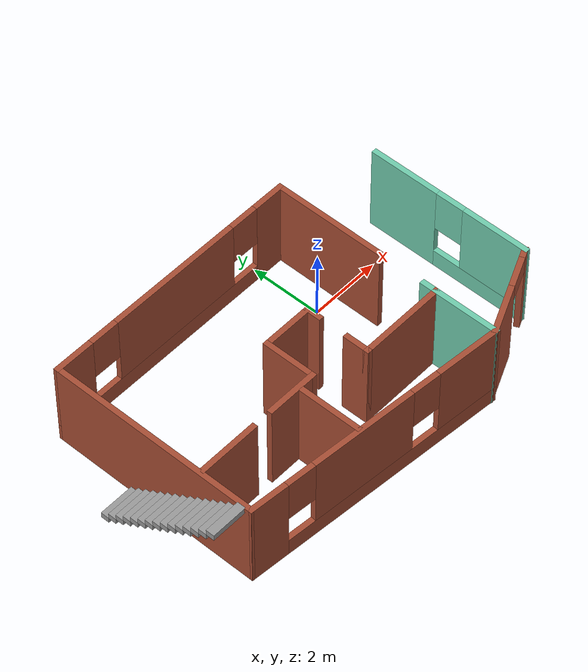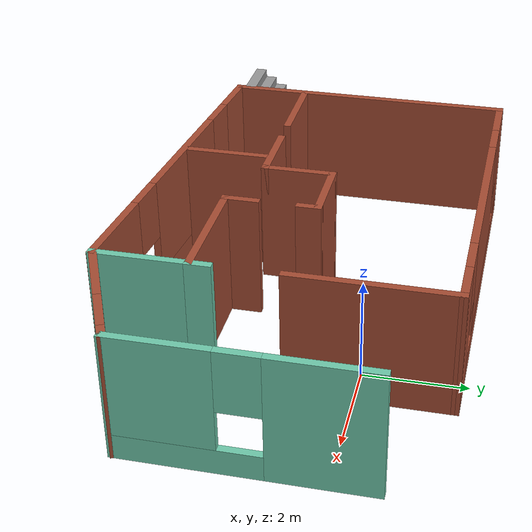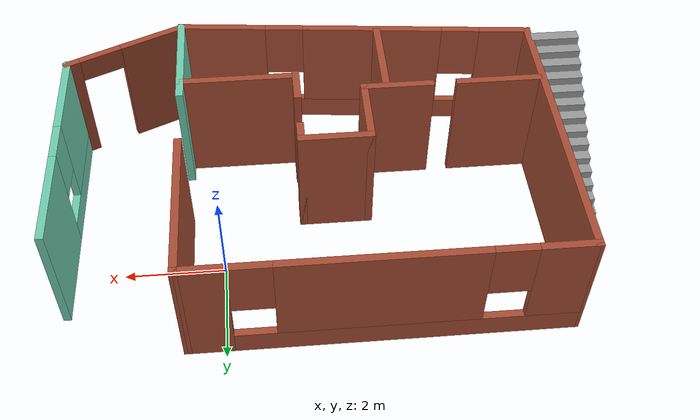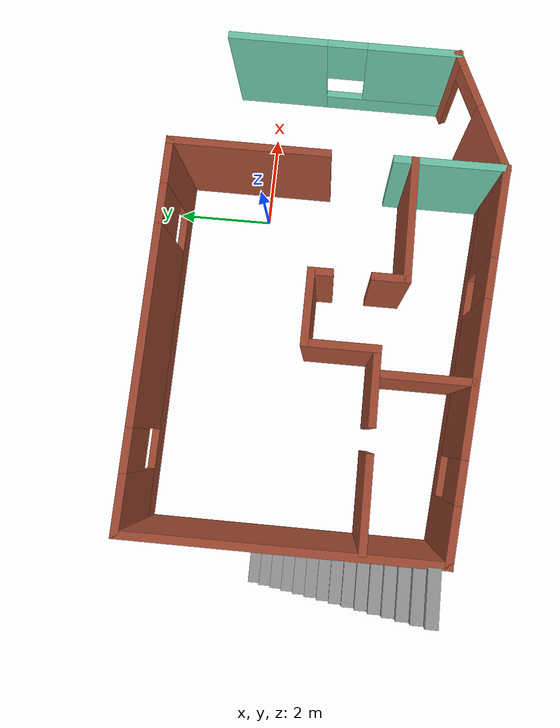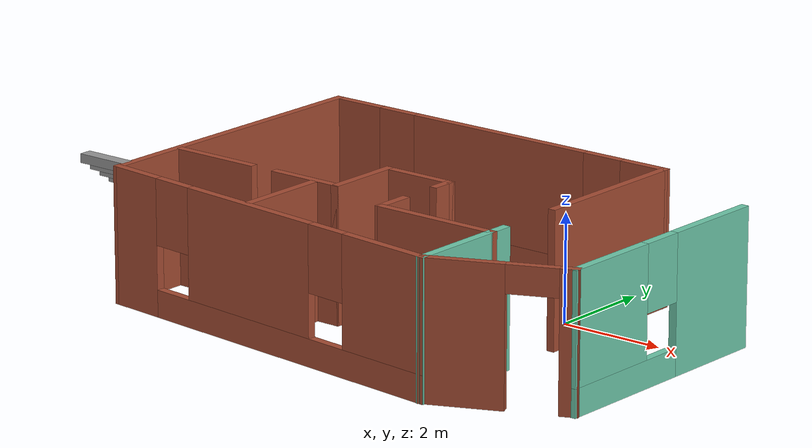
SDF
<?xml version='1.0'?>
<sdf version='1.6'>
  <model name='world_1'>
    <pose frame=''>-2.27165 -1.45762 0 0 -0 0</pose>
    <link name='Stairs_0'>
      <visual name='Stairs_0_Visual_0'>
        <pose frame=''>-4.90473 0.962573 0.083333 0 -0 0</pose>
        <geometry>
          <box>
            <size>1 0.233333 0.166667</size>
          </box>
        </geometry>
        <material>
          <script>
            <uri>file://media/materials/scripts/gazebo.material</uri>
            <name>Gazebo/Grey</name>
          </script>
          <ambient>1 1 1 1</ambient>
        </material>
        <meta>
          <layer>0</layer>
        </meta>
      </visual>
      <collision name='Stairs_0_Collision_0'>
        <geometry>
          <box>
            <size>1 0.233333 0.166667</size>
          </box>
        </geometry>
        <pose frame=''>-4.90473 0.962573 0.083333 0 -0 0</pose>
      </collision>
      <visual name='Stairs_0_Visual_1'>
        <pose frame=''>-4.90473 0.72924 0.25 0 -0 0</pose>
        <geometry>
          <box>
            <size>1 0.233333 0.166667</size>
          </box>
        </geometry>
        <material>
          <script>
            <uri>file://media/materials/scripts/gazebo.material</uri>
            <name>Gazebo/Grey</name>
          </script>
          <ambient>1 1 1 1</ambient>
        </material>
        <meta>
          <layer>0</layer>
        </meta>
      </visual>
      <collision name='Stairs_0_Collision_1'>
        <geometry>
          <box>
            <size>1 0.233333 0.166667</size>
          </box>
        </geometry>
        <pose frame=''>-4.90473 0.72924 0.25 0 -0 0</pose>
      </collision>
      <visual name='Stairs_0_Visual_2'>
        <pose frame=''>-4.90473 0.495906 0.416667 0 -0 0</pose>
        <geometry>
          <box>
            <size>1 0.233333 0.166667</size>
          </box>
        </geometry>
        <material>
          <script>
            <uri>file://media/materials/scripts/gazebo.material</uri>
            <name>Gazebo/Grey</name>
          </script>
          <ambient>1 1 1 1</ambient>
        </material>
        <meta>
          <layer>0</layer>
        </meta>
      </visual>
      <collision name='Stairs_0_Collision_2'>
        <geometry>
          <box>
            <size>1 0.233333 0.166667</size>
          </box>
        </geometry>
        <pose frame=''>-4.90473 0.495906 0.416667 0 -0 0</pose>
      </collision>
      <visual name='Stairs_0_Visual_3'>
        <pose frame=''>-4.90473 0.262573 0.583333 0 -0 0</pose>
        <geometry>
          <box>
            <size>1 0.233333 0.166667</size>
          </box>
        </geometry>
        <material>
          <script>
            <uri>file://media/materials/scripts/gazebo.material</uri>
            <name>Gazebo/Grey</name>
          </script>
          <ambient>1 1 1 1</ambient>
        </material>
        <meta>
          <layer>0</layer>
        </meta>
      </visual>
      <collision name='Stairs_0_Collision_3'>
        <geometry>
          <box>
            <size>1 0.233333 0.166667</size>
          </box>
        </geometry>
        <pose frame=''>-4.90473 0.262573 0.583333 0 -0 0</pose>
      </collision>
      <visual name='Stairs_0_Visual_4'>
        <pose frame=''>-4.90473 0.02924 0.75 0 -0 0</pose>
        <geometry>
          <box>
            <size>1 0.233333 0.166667</size>
          </box>
        </geometry>
        <material>
          <script>
            <uri>file://media/materials/scripts/gazebo.material</uri>
            <name>Gazebo/Grey</name>
          </script>
          <ambient>1 1 1 1</ambient>
        </material>
        <meta>
          <layer>0</layer>
        </meta>
      </visual>
      <collision name='Stairs_0_Collision_4'>
        <geometry>
          <box>
            <size>1 0.233333 0.166667</size>
          </box>
        </geometry>
        <pose frame=''>-4.90473 0.02924 0.75 0 -0 0</pose>
      </collision>
      <visual name='Stairs_0_Visual_5'>
        <pose frame=''>-4.90473 -0.204094 0.916667 0 -0 0</pose>
        <geometry>
          <box>
            <size>1 0.233333 0.166667</size>
          </box>
        </geometry>
        <material>
          <script>
            <uri>file://media/materials/scripts/gazebo.material</uri>
            <name>Gazebo/Grey</name>
          </script>
          <ambient>1 1 1 1</ambient>
        </material>
        <meta>
          <layer>0</layer>
        </meta>
      </visual>
      <collision name='Stairs_0_Collision_5'>
        <geometry>
          <box>
            <size>1 0.233333 0.166667</size>
          </box>
        </geometry>
        <pose frame=''>-4.90473 -0.204094 0.916667 0 -0 0</pose>
      </collision>
      <visual name='Stairs_0_Visual_6'>
        <pose frame=''>-4.90473 -0.437427 1.08333 0 -0 0</pose>
        <geometry>
          <box>
            <size>1 0.233333 0.166667</size>
          </box>
        </geometry>
        <material>
          <script>
            <uri>file://media/materials/scripts/gazebo.material</uri>
            <name>Gazebo/Grey</name>
          </script>
          <ambient>1 1 1 1</ambient>
        </material>
        <meta>
          <layer>0</layer>
        </meta>
      </visual>
      <collision name='Stairs_0_Collision_6'>
        <geometry>
          <box>
            <size>1 0.233333 0.166667</size>
          </box>
        </geometry>
        <pose frame=''>-4.90473 -0.437427 1.08333 0 -0 0</pose>
      </collision>
      <visual name='Stairs_0_Visual_7'>
        <pose frame=''>-4.90473 -0.67076 1.25 0 -0 0</pose>
        <geometry>
          <box>
            <size>1 0.233333 0.166667</size>
          </box>
        </geometry>
        <material>
          <script>
            <uri>file://media/materials/scripts/gazebo.material</uri>
            <name>Gazebo/Grey</name>
          </script>
          <ambient>1 1 1 1</ambient>
        </material>
        <meta>
          <layer>0</layer>
        </meta>
      </visual>
      <collision name='Stairs_0_Collision_7'>
        <geometry>
          <box>
            <size>1 0.233333 0.166667</size>
          </box>
        </geometry>
        <pose frame=''>-4.90473 -0.67076 1.25 0 -0 0</pose>
      </collision>
      <visual name='Stairs_0_Visual_8'>
        <pose frame=''>-4.90473 -0.904094 1.41667 0 -0 0</pose>
        <geometry>
          <box>
            <size>1 0.233333 0.166667</size>
          </box>
        </geometry>
        <material>
          <script>
            <uri>file://media/materials/scripts/gazebo.material</uri>
            <name>Gazebo/Grey</name>
          </script>
          <ambient>1 1 1 1</ambient>
        </material>
        <meta>
          <layer>0</layer>
        </meta>
      </visual>
      <collision name='Stairs_0_Collision_8'>
        <geometry>
          <box>
            <size>1 0.233333 0.166667</size>
          </box>
        </geometry>
        <pose frame=''>-4.90473 -0.904094 1.41667 0 -0 0</pose>
      </collision>
      <visual name='Stairs_0_Visual_9'>
        <pose frame=''>-4.90473 -1.13743 1.58333 0 -0 0</pose>
        <geometry>
          <box>
            <size>1 0.233333 0.166667</size>
          </box>
        </geometry>
        <material>
          <script>
            <uri>file://media/materials/scripts/gazebo.material</uri>
            <name>Gazebo/Grey</name>
          </script>
          <ambient>1 1 1 1</ambient>
        </material>
        <meta>
          <layer>0</layer>
        </meta>
      </visual>
      <collision name='Stairs_0_Collision_9'>
        <geometry>
          <box>
            <size>1 0.233333 0.166667</size>
          </box>
        </geometry>
        <pose frame=''>-4.90473 -1.13743 1.58333 0 -0 0</pose>
      </collision>
      <visual name='Stairs_0_Visual_10'>
        <pose frame=''>-4.90473 -1.37076 1.75 0 -0 0</pose>
        <geometry>
          <box>
            <size>1 0.233333 0.166667</size>
          </box>
        </geometry>
        <material>
          <script>
            <uri>file://media/materials/scripts/gazebo.material</uri>
            <name>Gazebo/Grey</name>
          </script>
          <ambient>1 1 1 1</ambient>
        </material>
        <meta>
          <layer>0</layer>
        </meta>
      </visual>
      <collision name='Stairs_0_Collision_10'>
        <geometry>
          <box>
            <size>1 0.233333 0.166667</size>
          </box>
        </geometry>
        <pose frame=''>-4.90473 -1.37076 1.75 0 -0 0</pose>
      </collision>
      <visual name='Stairs_0_Visual_11'>
        <pose frame=''>-4.90473 -1.60409 1.91667 0 -0 0</pose>
        <geometry>
          <box>
            <size>1 0.233333 0.166667</size>
          </box>
        </geometry>
        <material>
          <script>
            <uri>file://media/materials/scripts/gazebo.material</uri>
            <name>Gazebo/Grey</name>
          </script>
          <ambient>1 1 1 1</ambient>
        </material>
        <meta>
          <layer>0</layer>
        </meta>
      </visual>
      <collision name='Stairs_0_Collision_11'>
        <geometry>
          <box>
            <size>1 0.233333 0.166667</size>
          </box>
        </geometry>
        <pose frame=''>-4.90473 -1.60409 1.91667 0 -0 0</pose>
      </collision>
      <visual name='Stairs_0_Visual_12'>
        <pose frame=''>-4.90473 -1.83743 2.08333 0 -0 0</pose>
        <geometry>
          <box>
            <size>1 0.233333 0.166667</size>
          </box>
        </geometry>
        <material>
          <script>
            <uri>file://media/materials/scripts/gazebo.material</uri>
            <name>Gazebo/Grey</name>
          </script>
          <ambient>1 1 1 1</ambient>
        </material>
        <meta>
          <layer>0</layer>
        </meta>
      </visual>
      <collision name='Stairs_0_Collision_12'>
        <geometry>
          <box>
            <size>1 0.233333 0.166667</size>
          </box>
        </geometry>
        <pose frame=''>-4.90473 -1.83743 2.08333 0 -0 0</pose>
      </collision>
      <visual name='Stairs_0_Visual_13'>
        <pose frame=''>-4.90473 -2.07076 2.25 0 -0 0</pose>
        <geometry>
          <box>
            <size>1 0.233333 0.166667</size>
          </box>
        </geometry>
        <material>
          <script>
            <uri>file://media/materials/scripts/gazebo.material</uri>
            <name>Gazebo/Grey</name>
          </script>
          <ambient>1 1 1 1</ambient>
        </material>
        <meta>
          <layer>0</layer>
        </meta>
      </visual>
      <collision name='Stairs_0_Collision_13'>
        <geometry>
          <box>
            <size>1 0.233333 0.166667</size>
          </box>
        </geometry>
        <pose frame=''>-4.90473 -2.07076 2.25 0 -0 0</pose>
      </collision>
      <visual name='Stairs_0_Visual_14'>
        <pose frame=''>-4.90473 -2.30409 2.41667 0 -0 0</pose>
        <geometry>
          <box>
            <size>1 0.233333 0.166667</size>
          </box>
        </geometry>
        <material>
          <script>
            <uri>file://media/materials/scripts/gazebo.material</uri>
            <name>Gazebo/Grey</name>
          </script>
          <ambient>1 1 1 1</ambient>
        </material>
        <meta>
          <layer>0</layer>
        </meta>
      </visual>
      <collision name='Stairs_0_Collision_14'>
        <geometry>
          <box>
            <size>1 0.233333 0.166667</size>
          </box>
        </geometry>
        <pose frame=''>-4.90473 -2.30409 2.41667 0 -0 0</pose>
      </collision>
    </link>
    <link name='Wall_17'>
      <collision name='Wall_17_Collision'>
        <geometry>
          <box>
            <size>1.5 0.15 2.5</size>
          </box>
        </geometry>
        <pose frame=''>0 0 1.25 0 -0 0</pose>
      </collision>
      <visual name='Wall_17_Visual'>
        <pose frame=''>0 0 1.25 0 -0 0</pose>
        <geometry>
          <box>
            <size>1.5 0.15 2.5</size>
          </box>
        </geometry>
        <material>
          <script>
            <uri>file://media/materials/scripts/gazebo.material</uri>
            <name>Gazebo/Bricks</name>
          </script>
          <ambient>1 1 1 1</ambient>
        </material>
        <meta>
          <layer>0</layer>
        </meta>
      </visual>
      <pose frame=''>-1.38893 -1.04611 0 0 -0 0</pose>
    </link>
    <link name='Wall_18'>
      <collision name='Wall_18_Collision'>
        <geometry>
          <box>
            <size>1.5 0.15 2.5</size>
          </box>
        </geometry>
        <pose frame=''>0 0 1.25 0 -0 0</pose>
      </collision>
      <visual name='Wall_18_Visual'>
        <pose frame=''>0 0 1.25 0 -0 0</pose>
        <geometry>
          <box>
            <size>1.5 0.15 2.5</size>
          </box>
        </geometry>
        <material>
          <script>
            <uri>file://media/materials/scripts/gazebo.material</uri>
            <name>Gazebo/Bricks</name>
          </script>
          <ambient>1 1 1 1</ambient>
        </material>
        <meta>
          <layer>0</layer>
        </meta>
      </visual>
      <pose frame=''>-0.713932 -0.371112 0 0 -0 1.5708</pose>
    </link>
    <link name='Wall_19'>
      <collision name='Wall_19_Collision'>
        <geometry>
          <box>
            <size>1.5 0.15 2.5</size>
          </box>
        </geometry>
        <pose frame=''>0 0 1.25 0 -0 0</pose>
      </collision>
      <visual name='Wall_19_Visual'>
        <pose frame=''>0 0 1.25 0 -0 0</pose>
        <geometry>
          <box>
            <size>1.5 0.15 2.5</size>
          </box>
        </geometry>
        <material>
          <script>
            <uri>file://media/materials/scripts/gazebo.material</uri>
            <name>Gazebo/Bricks</name>
          </script>
          <ambient>1 1 1 1</ambient>
        </material>
        <meta>
          <layer>0</layer>
        </meta>
      </visual>
      <pose frame=''>-0.038932 0.303888 0 0 -0 0</pose>
    </link>
    <link name='Wall_20'>
      <collision name='Wall_20_Collision'>
        <geometry>
          <box>
            <size>0.5 0.15 2.5</size>
          </box>
        </geometry>
        <pose frame=''>0 0 1.25 0 -0 0</pose>
      </collision>
      <visual name='Wall_20_Visual'>
        <pose frame=''>0 0 1.25 0 -0 0</pose>
        <geometry>
          <box>
            <size>0.5 0.15 2.5</size>
          </box>
        </geometry>
        <material>
          <script>
            <uri>file://media/materials/scripts/gazebo.material</uri>
            <name>Gazebo/Bricks</name>
          </script>
          <ambient>1 1 1 1</ambient>
        </material>
        <meta>
          <layer>0</layer>
        </meta>
      </visual>
      <pose frame=''>0.636068 0.128888 0 0 -0 -1.5708</pose>
    </link>
    <link name='Wall_22'>
      <collision name='Wall_22_Collision'>
        <geometry>
          <box>
            <size>0.75 0.15 2.5</size>
          </box>
        </geometry>
        <pose frame=''>0 0 1.25 0 -0 0</pose>
      </collision>
      <visual name='Wall_22_Visual'>
        <pose frame=''>0 0 1.25 0 -0 0</pose>
        <geometry>
          <box>
            <size>0.75 0.15 2.5</size>
          </box>
        </geometry>
        <material>
          <script>
            <uri>file://media/materials/scripts/gazebo.material</uri>
            <name>Gazebo/Bricks</name>
          </script>
          <ambient>1 1 1 1</ambient>
        </material>
        <meta>
          <layer>0</layer>
        </meta>
      </visual>
      <pose frame=''>0.636068 -1.19611 0 0 -0 -1.5708</pose>
    </link>
    <link name='Wall_23'>
      <collision name='Wall_23_Collision'>
        <geometry>
          <box>
            <size>2.5 0.15 2.5</size>
          </box>
        </geometry>
        <pose frame=''>0 0 1.25 0 -0 0</pose>
      </collision>
      <visual name='Wall_23_Visual'>
        <pose frame=''>0 0 1.25 0 -0 0</pose>
        <geometry>
          <box>
            <size>2.5 0.15 2.5</size>
          </box>
        </geometry>
        <material>
          <script>
            <uri>file://media/materials/scripts/gazebo.material</uri>
            <name>Gazebo/Bricks</name>
          </script>
          <ambient>1 1 1 1</ambient>
        </material>
        <meta>
          <layer>0</layer>
        </meta>
      </visual>
      <pose frame=''>1.81107 -1.49611 0 0 -0 0</pose>
    </link>
    <link name='Wall_24'>
      <collision name='Wall_24_Collision'>
        <geometry>
          <box>
            <size>0.5 0.15 2.5</size>
          </box>
        </geometry>
        <pose frame=''>0 0 1.25 0 -0 0</pose>
      </collision>
      <visual name='Wall_24_Visual'>
        <pose frame=''>0 0 1.25 0 -0 0</pose>
        <geometry>
          <box>
            <size>0.5 0.15 2.5</size>
          </box>
        </geometry>
        <material>
          <script>
            <uri>file://media/materials/scripts/gazebo.material</uri>
            <name>Gazebo/Grey</name>
          </script>
          <ambient>0.435294 0.796078 0.67451 1</ambient>
        </material>
        <meta>
          <layer>0</layer>
        </meta>
      </visual>
      <pose frame=''>2.98607 -1.32111 0 0 -0 1.5708</pose>
    </link>
    <link name='Wall_26'>
      <collision name='Wall_26_Collision'>
        <geometry>
          <box>
            <size>3.21704 0.15 2.5</size>
          </box>
        </geometry>
        <pose frame=''>0 0 1.25 0 -0 0</pose>
      </collision>
      <visual name='Wall_26_Visual'>
        <pose frame=''>0 0 1.25 0 -0 0</pose>
        <geometry>
          <box>
            <size>3.21704 0.15 2.5</size>
          </box>
        </geometry>
        <material>
          <script>
            <uri>file://media/materials/scripts/gazebo.material</uri>
            <name>Gazebo/Bricks</name>
          </script>
          <ambient>1 1 1 1</ambient>
        </material>
        <meta>
          <layer>0</layer>
        </meta>
      </visual>
      <pose frame=''>2.99055 1.7374 0 0 -0 1.56787</pose>
    </link>
    <link name='Wall_30'>
      <collision name='Wall_30_Collision'>
        <geometry>
          <box>
            <size>1.91415 0.15 2.5</size>
          </box>
        </geometry>
        <pose frame=''>0 0 1.25 0 -0 0</pose>
      </collision>
      <visual name='Wall_30_Visual'>
        <pose frame=''>0 0 1.25 0 -0 0</pose>
        <geometry>
          <box>
            <size>1.91415 0.15 2.5</size>
          </box>
        </geometry>
        <material>
          <script>
            <uri>file://media/materials/scripts/gazebo.material</uri>
            <name>Gazebo/Grey</name>
          </script>
          <ambient>0.435294 0.796078 0.67451 1</ambient>
        </material>
        <meta>
          <layer>0</layer>
        </meta>
      </visual>
      <pose frame=''>2.98607 -2.37819 0 0 -0 1.5708</pose>
    </link>
    <link name='Wall_34'>
      <pose frame=''>-0.679968 3.27091 0 0 -0 3.14159</pose>
      <visual name='Wall_34_Visual_0'>
        <pose frame=''>-3.2676 0 1.25 0 -0 0</pose>
        <geometry>
          <box>
            <size>0.9648 0.15 2.5</size>
          </box>
        </geometry>
        <material>
          <script>
            <uri>file://media/materials/scripts/gazebo.material</uri>
            <name>Gazebo/Bricks</name>
          </script>
          <ambient>1 1 1 1</ambient>
        </material>
        <meta>
          <layer>0</layer>
        </meta>
      </visual>
      <collision name='Wall_34_Collision_0'>
        <geometry>
          <box>
            <size>0.9648 0.15 2.5</size>
          </box>
        </geometry>
        <pose frame=''>-3.2676 0 1.25 0 -0 0</pose>
      </collision>
      <visual name='Wall_34_Visual_1'>
        <pose frame=''>0.4824 0 0.25 0 -0 0</pose>
        <geometry>
          <box>
            <size>6.5352 0.15 0.5</size>
          </box>
        </geometry>
        <material>
          <script>
            <uri>file://media/materials/scripts/gazebo.material</uri>
            <name>Gazebo/Bricks</name>
          </script>
          <ambient>1 1 1 1</ambient>
        </material>
        <meta>
          <layer>0</layer>
        </meta>
      </visual>
      <collision name='Wall_34_Collision_1'>
        <geometry>
          <box>
            <size>6.5352 0.15 0.5</size>
          </box>
        </geometry>
        <pose frame=''>0.4824 0 0.25 0 -0 0</pose>
      </collision>
      <visual name='Wall_34_Visual_2'>
        <pose frame=''>-0.0737 0 1.5 0 -0 0</pose>
        <geometry>
          <box>
            <size>3.823 0.15 2</size>
          </box>
        </geometry>
        <material>
          <script>
            <uri>file://media/materials/scripts/gazebo.material</uri>
            <name>Gazebo/Bricks</name>
          </script>
          <ambient>1 1 1 1</ambient>
        </material>
        <meta>
          <layer>0</layer>
        </meta>
      </visual>
      <collision name='Wall_34_Collision_2'>
        <geometry>
          <box>
            <size>3.823 0.15 2</size>
          </box>
        </geometry>
        <pose frame=''>-0.0737 0 1.5 0 -0 0</pose>
      </collision>
      <visual name='Wall_34_Visual_3'>
        <pose frame=''>3.1939 0 1.5 0 -0 0</pose>
        <geometry>
          <box>
            <size>1.1122 0.15 2</size>
          </box>
        </geometry>
        <material>
          <script>
            <uri>file://media/materials/scripts/gazebo.material</uri>
            <name>Gazebo/Bricks</name>
          </script>
          <ambient>1 1 1 1</ambient>
        </material>
        <meta>
          <layer>0</layer>
        </meta>
      </visual>
      <collision name='Wall_34_Collision_3'>
        <geometry>
          <box>
            <size>1.1122 0.15 2</size>
          </box>
        </geometry>
        <pose frame=''>3.1939 0 1.5 0 -0 0</pose>
      </collision>
      <visual name='Wall_34_Visual_4'>
        <pose frame=''>-2.3852 0 1.9 0 -0 0</pose>
        <geometry>
          <box>
            <size>0.8 0.15 1.2</size>
          </box>
        </geometry>
        <material>
          <script>
            <uri>file://media/materials/scripts/gazebo.material</uri>
            <name>Gazebo/Bricks</name>
          </script>
          <ambient>1 1 1 1</ambient>
        </material>
        <meta>
          <layer>0</layer>
        </meta>
      </visual>
      <collision name='Wall_34_Collision_4'>
        <geometry>
          <box>
            <size>0.8 0.15 1.2</size>
          </box>
        </geometry>
        <pose frame=''>-2.3852 0 1.9 0 -0 0</pose>
      </collision>
      <visual name='Wall_34_Visual_5'>
        <pose frame=''>2.2378 0 1.9 0 -0 0</pose>
        <geometry>
          <box>
            <size>0.8 0.15 1.2</size>
          </box>
        </geometry>
        <material>
          <script>
            <uri>file://media/materials/scripts/gazebo.material</uri>
            <name>Gazebo/Bricks</name>
          </script>
          <ambient>1 1 1 1</ambient>
        </material>
        <meta>
          <layer>0</layer>
        </meta>
      </visual>
      <collision name='Wall_34_Collision_5'>
        <geometry>
          <box>
            <size>0.8 0.15 1.2</size>
          </box>
        </geometry>
        <pose frame=''>2.2378 0 1.9 0 -0 0</pose>
      </collision>
    </link>
    <link name='Wall_35'>
      <collision name='Wall_35_Collision'>
        <geometry>
          <box>
            <size>5.96703 0.15 2.5</size>
          </box>
        </geometry>
        <pose frame=''>0 0 1.25 0 -0 0</pose>
      </collision>
      <visual name='Wall_35_Visual'>
        <pose frame=''>0 0 1.25 0 -0 0</pose>
        <geometry>
          <box>
            <size>5.96703 0.15 2.5</size>
          </box>
        </geometry>
        <material>
          <script>
            <uri>file://media/materials/scripts/gazebo.material</uri>
            <name>Gazebo/Bricks</name>
          </script>
          <ambient>1 1 1 1</ambient>
        </material>
        <meta>
          <layer>0</layer>
        </meta>
      </visual>
      <pose frame=''>-4.35945 0.3624 0 0 -0 -1.57234</pose>
    </link>
    <link name='Wall_36'>
      <pose frame=''>-0.688932 -2.90319 0 0 -0 -0.096859</pose>
      <visual name='Wall_36_Visual_0'>
        <pose frame=''>-3.21938 0 1.25 0 -0 0</pose>
        <geometry>
          <box>
            <size>1.09586 0.15 2.5</size>
          </box>
        </geometry>
        <material>
          <script>
            <uri>file://media/materials/scripts/gazebo.material</uri>
            <name>Gazebo/Bricks</name>
          </script>
          <ambient>1 1 1 1</ambient>
        </material>
        <meta>
          <layer>0</layer>
        </meta>
      </visual>
      <collision name='Wall_36_Collision_0'>
        <geometry>
          <box>
            <size>1.09586 0.15 2.5</size>
          </box>
        </geometry>
        <pose frame=''>-3.21938 0 1.25 0 -0 0</pose>
      </collision>
      <visual name='Wall_36_Visual_1'>
        <pose frame=''>0.54793 0 0.25 0 -0 0</pose>
        <geometry>
          <box>
            <size>6.43875 0.15 0.5</size>
          </box>
        </geometry>
        <material>
          <script>
            <uri>file://media/materials/scripts/gazebo.material</uri>
            <name>Gazebo/Bricks</name>
          </script>
          <ambient>1 1 1 1</ambient>
        </material>
        <meta>
          <layer>0</layer>
        </meta>
      </visual>
      <collision name='Wall_36_Collision_1'>
        <geometry>
          <box>
            <size>6.43875 0.15 0.5</size>
          </box>
        </geometry>
        <pose frame=''>0.54793 0 0.25 0 -0 0</pose>
      </collision>
      <visual name='Wall_36_Visual_2'>
        <pose frame=''>-0.388119 0 1.5 0 -0 0</pose>
        <geometry>
          <box>
            <size>2.96665 0.15 2</size>
          </box>
        </geometry>
        <material>
          <script>
            <uri>file://media/materials/scripts/gazebo.material</uri>
            <name>Gazebo/Bricks</name>
          </script>
          <ambient>1 1 1 1</ambient>
        </material>
        <meta>
          <layer>0</layer>
        </meta>
      </visual>
      <collision name='Wall_36_Collision_2'>
        <geometry>
          <box>
            <size>2.96665 0.15 2</size>
          </box>
        </geometry>
        <pose frame=''>-0.388119 0 1.5 0 -0 0</pose>
      </collision>
      <visual name='Wall_36_Visual_3'>
        <pose frame=''>2.83126 0 1.5 0 -0 0</pose>
        <geometry>
          <box>
            <size>1.8721 0.15 2</size>
          </box>
        </geometry>
        <material>
          <script>
            <uri>file://media/materials/scripts/gazebo.material</uri>
            <name>Gazebo/Bricks</name>
          </script>
          <ambient>1 1 1 1</ambient>
        </material>
        <meta>
          <layer>0</layer>
        </meta>
      </visual>
      <collision name='Wall_36_Collision_3'>
        <geometry>
          <box>
            <size>1.8721 0.15 2</size>
          </box>
        </geometry>
        <pose frame=''>2.83126 0 1.5 0 -0 0</pose>
      </collision>
      <visual name='Wall_36_Visual_4'>
        <pose frame=''>-2.27145 0 1.9 0 -0 0</pose>
        <geometry>
          <box>
            <size>0.8 0.15 1.2</size>
          </box>
        </geometry>
        <material>
          <script>
            <uri>file://media/materials/scripts/gazebo.material</uri>
            <name>Gazebo/Bricks</name>
          </script>
          <ambient>1 1 1 1</ambient>
        </material>
        <meta>
          <layer>0</layer>
        </meta>
      </visual>
      <collision name='Wall_36_Collision_4'>
        <geometry>
          <box>
            <size>0.8 0.15 1.2</size>
          </box>
        </geometry>
        <pose frame=''>-2.27145 0 1.9 0 -0 0</pose>
      </collision>
      <visual name='Wall_36_Visual_5'>
        <pose frame=''>1.49521 0 1.9 0 -0 0</pose>
        <geometry>
          <box>
            <size>0.8 0.15 1.2</size>
          </box>
        </geometry>
        <material>
          <script>
            <uri>file://media/materials/scripts/gazebo.material</uri>
            <name>Gazebo/Bricks</name>
          </script>
          <ambient>1 1 1 1</ambient>
        </material>
        <meta>
          <layer>0</layer>
        </meta>
      </visual>
      <collision name='Wall_36_Collision_5'>
        <geometry>
          <box>
            <size>0.8 0.15 1.2</size>
          </box>
        </geometry>
        <pose frame=''>1.49521 0 1.9 0 -0 0</pose>
      </collision>
    </link>
    <link name='Wall_38'>
      <collision name='Wall_38_Collision'>
        <geometry>
          <box>
            <size>1.75 0.15 2.5</size>
          </box>
        </geometry>
        <pose frame=''>0 0 1.25 0 -0 0</pose>
      </collision>
      <visual name='Wall_38_Visual'>
        <pose frame=''>0 0 1.25 0 -0 0</pose>
        <geometry>
          <box>
            <size>1.75 0.15 2.5</size>
          </box>
        </geometry>
        <material>
          <script>
            <uri>file://media/materials/scripts/gazebo.material</uri>
            <name>Gazebo/Bricks</name>
          </script>
          <ambient>1 1 1 1</ambient>
        </material>
        <meta>
          <layer>0</layer>
        </meta>
      </visual>
      <pose frame=''>-3.46393 -1.04611 0 0 -0 3.14159</pose>
    </link>
    <link name='Wall_41'>
      <pose frame=''>5.31438 0.051177 0 0 -0 -1.57464</pose>
      <visual name='Wall_41_Visual_0'>
        <pose frame=''>-1.35165 0 1.25 0 -0 0</pose>
        <geometry>
          <box>
            <size>1.9934 0.15 2.5</size>
          </box>
        </geometry>
        <material>
          <script>
            <uri>file://media/materials/scripts/gazebo.material</uri>
            <name>Gazebo/Grey</name>
          </script>
          <ambient>0.435294 0.796078 0.67451 1</ambient>
        </material>
        <meta>
          <layer>0</layer>
        </meta>
      </visual>
      <collision name='Wall_41_Collision_0'>
        <geometry>
          <box>
            <size>1.9934 0.15 2.5</size>
          </box>
        </geometry>
        <pose frame=''>-1.35165 0 1.25 0 -0 0</pose>
      </collision>
      <visual name='Wall_41_Visual_1'>
        <pose frame=''>0.996699 0 0.25 0 -0 0</pose>
        <geometry>
          <box>
            <size>2.70329 0.15 0.5</size>
          </box>
        </geometry>
        <material>
          <script>
            <uri>file://media/materials/scripts/gazebo.material</uri>
            <name>Gazebo/Grey</name>
          </script>
          <ambient>0.435294 0.796078 0.67451 1</ambient>
        </material>
        <meta>
          <layer>0</layer>
        </meta>
      </visual>
      <collision name='Wall_41_Collision_1'>
        <geometry>
          <box>
            <size>2.70329 0.15 0.5</size>
          </box>
        </geometry>
        <pose frame=''>0.996699 0 0.25 0 -0 0</pose>
      </collision>
      <visual name='Wall_41_Visual_2'>
        <pose frame=''>1.3967 0 1.5 0 -0 0</pose>
        <geometry>
          <box>
            <size>1.90329 0.15 2</size>
          </box>
        </geometry>
        <material>
          <script>
            <uri>file://media/materials/scripts/gazebo.material</uri>
            <name>Gazebo/Grey</name>
          </script>
          <ambient>0.435294 0.796078 0.67451 1</ambient>
        </material>
        <meta>
          <layer>0</layer>
        </meta>
      </visual>
      <collision name='Wall_41_Collision_2'>
        <geometry>
          <box>
            <size>1.90329 0.15 2</size>
          </box>
        </geometry>
        <pose frame=''>1.3967 0 1.5 0 -0 0</pose>
      </collision>
      <visual name='Wall_41_Visual_3'>
        <pose frame=''>0.045052 0 1.9 0 -0 0</pose>
        <geometry>
          <box>
            <size>0.8 0.15 1.2</size>
          </box>
        </geometry>
        <material>
          <script>
            <uri>file://media/materials/scripts/gazebo.material</uri>
            <name>Gazebo/Grey</name>
          </script>
          <ambient>0.435294 0.796078 0.67451 1</ambient>
        </material>
        <meta>
          <layer>0</layer>
        </meta>
      </visual>
      <collision name='Wall_41_Collision_3'>
        <geometry>
          <box>
            <size>0.8 0.15 1.2</size>
          </box>
        </geometry>
        <pose frame=''>0.045052 0 1.9 0 -0 0</pose>
      </collision>
    </link>
    <link name='Wall_42'>
      <pose frame=''>4.14585 -2.72798 0 0 -0 -2.72078</pose>
      <visual name='Wall_42_Visual_0'>
        <pose frame=''>-1.17829 0 1.25 0 -0 0</pose>
        <geometry>
          <box>
            <size>0.3347 0.15 2.5</size>
          </box>
        </geometry>
        <material>
          <script>
            <uri>file://media/materials/scripts/gazebo.material</uri>
            <name>Gazebo/Bricks</name>
          </script>
          <ambient>1 1 1 1</ambient>
        </material>
        <meta>
          <layer>0</layer>
        </meta>
      </visual>
      <collision name='Wall_42_Collision_0'>
        <geometry>
          <box>
            <size>0.3347 0.15 2.5</size>
          </box>
        </geometry>
        <pose frame=''>-1.17829 0 1.25 0 -0 0</pose>
      </collision>
      <visual name='Wall_42_Visual_1'>
        <pose frame=''>0.61735 0 1.25 0 -0 0</pose>
        <geometry>
          <box>
            <size>1.45657 0.15 2.5</size>
          </box>
        </geometry>
        <material>
          <script>
            <uri>file://media/materials/scripts/gazebo.material</uri>
            <name>Gazebo/Bricks</name>
          </script>
          <ambient>1 1 1 1</ambient>
        </material>
        <meta>
          <layer>0</layer>
        </meta>
      </visual>
      <collision name='Wall_42_Collision_1'>
        <geometry>
          <box>
            <size>1.45657 0.15 2.5</size>
          </box>
        </geometry>
        <pose frame=''>0.61735 0 1.25 0 -0 0</pose>
      </collision>
      <visual name='Wall_42_Visual_2'>
        <pose frame=''>-0.560937 0 2.25 0 -0 0</pose>
        <geometry>
          <box>
            <size>0.9 0.15 0.5</size>
          </box>
        </geometry>
        <material>
          <script>
            <uri>file://media/materials/scripts/gazebo.material</uri>
            <name>Gazebo/Bricks</name>
          </script>
          <ambient>1 1 1 1</ambient>
        </material>
        <meta>
          <layer>0</layer>
        </meta>
      </visual>
      <collision name='Wall_42_Collision_2'>
        <geometry>
          <box>
            <size>0.9 0.15 0.5</size>
          </box>
        </geometry>
        <pose frame=''>-0.560937 0 2.25 0 -0 0</pose>
      </collision>
    </link>
    <link name='Wall_45'>
      <collision name='Wall_45_Collision'>
        <geometry>
          <box>
            <size>1.75 0.15 2.5</size>
          </box>
        </geometry>
        <pose frame=''>0 0 1.25 0 -0 0</pose>
      </collision>
      <visual name='Wall_45_Visual'>
        <pose frame=''>0 0 1.25 0 -0 0</pose>
        <geometry>
          <box>
            <size>1.75 0.15 2.5</size>
          </box>
        </geometry>
        <material>
          <script>
            <uri>file://media/materials/scripts/gazebo.material</uri>
            <name>Gazebo/Bricks</name>
          </script>
          <ambient>1 1 1 1</ambient>
        </material>
        <meta>
          <layer>0</layer>
        </meta>
      </visual>
      <pose frame=''>-1.16723 -1.98376 0 0 -0 1.5708</pose>
    </link>
    <static>1</static>
  </model>
</sdf>
